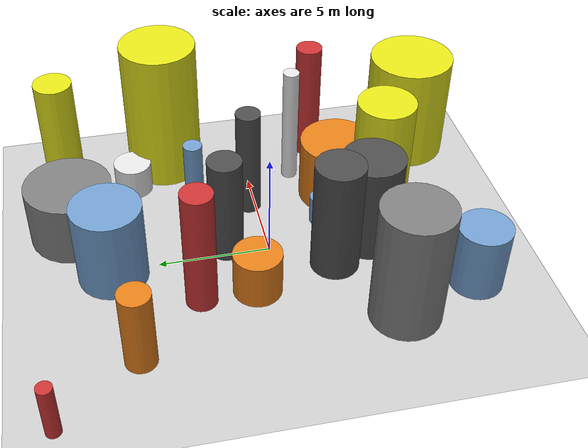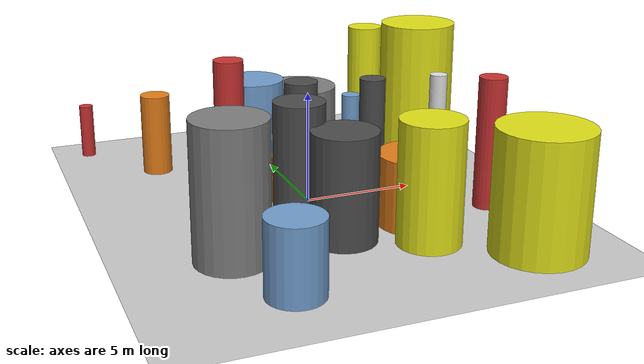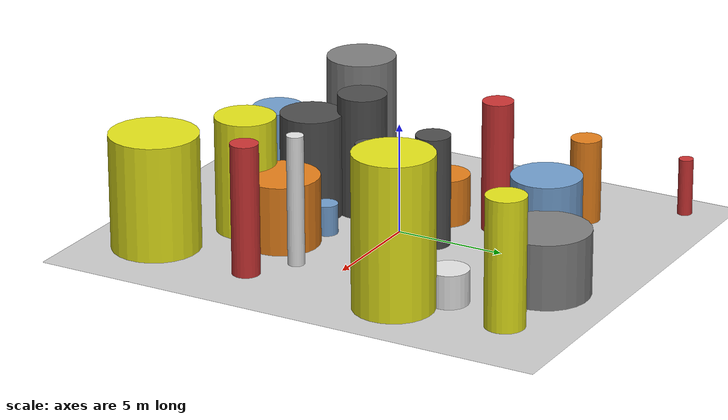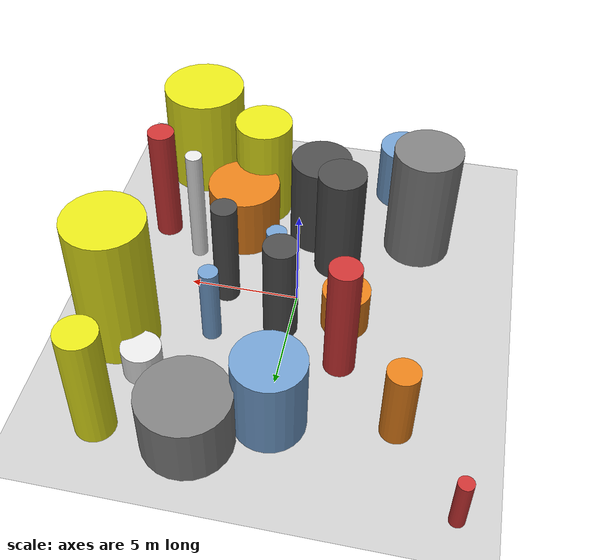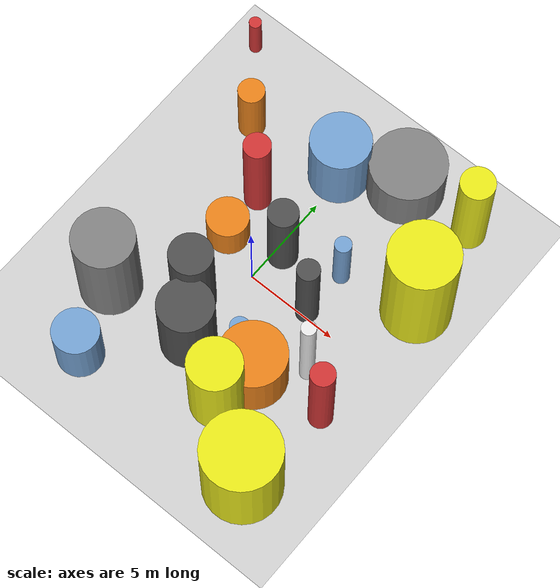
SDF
<?xml version='1.0'?>
<sdf version='1.6'>
  <world name='default'>
    <!-- Sun light -->
    <light name='sun' type='directional'>
      <cast_shadows>1</cast_shadows>
      <pose>0 0 10 0 0 0</pose>
      <diffuse>0.8 0.8 0.8 1</diffuse>
      <specular>0.2 0.2 0.2 1</specular>
      <attenuation>
        <range>1000</range>
        <constant>0.9</constant>
        <linear>0.01</linear>
        <quadratic>0.001</quadratic>
      </attenuation>
      <direction>-0.5 0.1 -0.9</direction>
    </light>

    <!-- Ground plane -->
    <model name='ground_plane'>
      <static>1</static>
      <link name='link'>
        <collision name='collision'>
          <geometry>
            <plane>
              <normal>0 0 1</normal>
              <size>100 100</size>
            </plane>
          </geometry>
          <surface>
            <contact>
              <collide_bitmask>65535</collide_bitmask>
              <ode/>
            </contact>
            <friction>
              <ode>
                <mu>100</mu>
                <mu2>50</mu2>
              </ode>
              <torsional><ode/></torsional>
            </friction>
            <bounce/>
          </surface>
          <max_contacts>10</max_contacts>
        </collision>
        <visual name='visual'>
          <cast_shadows>0</cast_shadows>
          <geometry>
            <plane>
              <normal>0 0 1</normal>
              <size>100 100</size>
            </plane>
          </geometry>
          <material>
            <script>
              <uri>file://media/materials/scripts/gazebo.material</uri>
              <n>Gazebo/Grey</n>
            </script>
          </material>
        </visual>
      </link>
    </model>

    <!-- Environment -->
    <magnetic_field>6e-06 2.3e-05 -4.2e-05</magnetic_field>
    <atmosphere type='adiabatic'/>
    <physics name='default_physics' default='0' type='ode'>
      <gravity>0 0 -9.8</gravity>
      <max_step_size>0.004</max_step_size>
      <real_time_factor>1</real_time_factor>
      <real_time_update_rate>250</real_time_update_rate>
    </physics>
    <scene>
      <ambient>0.4 0.4 0.4 1</ambient>
      <background>0.7 0.7 0.7 1</background>
      <shadows>1</shadows>
    </scene>
    <wind/>
    <spherical_coordinates>
      <surface_model>EARTH_WGS84</surface_model>
      <latitude_deg>0</latitude_deg>
      <longitude_deg>0</longitude_deg>
      <elevation>0</elevation>
      <heading_deg>0</heading_deg>
    </spherical_coordinates>

    <!-- ============ OBSTACLES (22) ============ -->
    <model name='obs_00'>
      <static>1</static>
      <link name='link'>
        <visual name='visual'>
          <geometry>
            <cylinder>
              <radius>1.4099</radius>
              <length>4.6870</length>
            </cylinder>
          </geometry>
          <material>
            <script>
              <n>Gazebo/DarkGrey</n>
              <uri>file://media/materials/scripts/gazebo.material</uri>
            </script>
            <ambient>0.3 0.3 0.3 1</ambient>
          </material>
        </visual>
        <collision name='collision'>
          <geometry>
            <cylinder>
              <radius>1.4099</radius>
              <length>4.6870</length>
            </cylinder>
          </geometry>
          <max_contacts>10</max_contacts>
          <surface>
            <contact><ode/></contact>
            <bounce/>
            <friction>
              <ode><mu>1</mu><mu2>1</mu2></ode>
              <torsional><ode/></torsional>
            </friction>
          </surface>
        </collision>
      </link>
      <pose>-0.2072 -4.5335 2.3435 0 0 2.0783</pose>
    </model>

    <model name='obs_01'>
      <static>1</static>
      <link name='link'>
        <visual name='visual'>
          <geometry>
            <cylinder>
              <radius>0.7744</radius>
              <length>5.0259</length>
            </cylinder>
          </geometry>
          <material>
            <script>
              <n>Gazebo/DarkGrey</n>
              <uri>file://media/materials/scripts/gazebo.material</uri>
            </script>
            <ambient>0.3 0.3 0.3 1</ambient>
          </material>
        </visual>
        <collision name='collision'>
          <geometry>
            <cylinder>
              <radius>0.7744</radius>
              <length>5.0259</length>
            </cylinder>
          </geometry>
          <max_contacts>10</max_contacts>
          <surface>
            <contact><ode/></contact>
            <bounce/>
            <friction>
              <ode><mu>1</mu><mu2>1</mu2></ode>
              <torsional><ode/></torsional>
            </friction>
          </surface>
        </collision>
      </link>
      <pose>0.4061 1.8769 2.5130 0 0 2.9055</pose>
    </model>

    <model name='obs_02'>
      <static>1</static>
      <link name='link'>
        <visual name='visual'>
          <geometry>
            <cylinder>
              <radius>0.3779</radius>
              <length>5.8635</length>
            </cylinder>
          </geometry>
          <material>
            <script>
              <n>Gazebo/White</n>
              <uri>file://media/materials/scripts/gazebo.material</uri>
            </script>
            <ambient>0.9 0.9 0.9 1</ambient>
          </material>
        </visual>
        <collision name='collision'>
          <geometry>
            <cylinder>
              <radius>0.3779</radius>
              <length>5.8635</length>
            </cylinder>
          </geometry>
          <max_contacts>10</max_contacts>
          <surface>
            <contact><ode/></contact>
            <bounce/>
            <friction>
              <ode><mu>1</mu><mu2>1</mu2></ode>
              <torsional><ode/></torsional>
            </friction>
          </surface>
        </collision>
      </link>
      <pose>5.2334 -2.1279 2.9317 0 0 0.8761</pose>
    </model>

    <model name='obs_03'>
      <static>1</static>
      <link name='link'>
        <visual name='visual'>
          <geometry>
            <cylinder>
              <radius>1.5700</radius>
              <length>5.8278</length>
            </cylinder>
          </geometry>
          <material>
            <script>
              <n>Gazebo/Grey</n>
              <uri>file://media/materials/scripts/gazebo.material</uri>
            </script>
            <ambient>0.5 0.5 0.5 1</ambient>
          </material>
        </visual>
        <collision name='collision'>
          <geometry>
            <cylinder>
              <radius>1.5700</radius>
              <length>5.8278</length>
            </cylinder>
          </geometry>
          <max_contacts>10</max_contacts>
          <surface>
            <contact><ode/></contact>
            <bounce/>
            <friction>
              <ode><mu>1</mu><mu2>1</mu2></ode>
              <torsional><ode/></torsional>
            </friction>
          </surface>
        </collision>
      </link>
      <pose>-5.0206 -4.7588 2.9139 0 0 0.0266</pose>
    </model>

    <model name='obs_04'>
      <static>1</static>
      <link name='link'>
        <visual name='visual'>
          <geometry>
            <cylinder>
              <radius>1.9664</radius>
              <length>2.9093</length>
            </cylinder>
          </geometry>
          <material>
            <script>
              <n>Gazebo/Grey</n>
              <uri>file://media/materials/scripts/gazebo.material</uri>
            </script>
            <ambient>0.5 0.5 0.5 1</ambient>
          </material>
        </visual>
        <collision name='collision'>
          <geometry>
            <cylinder>
              <radius>1.9664</radius>
              <length>2.9093</length>
            </cylinder>
          </geometry>
          <max_contacts>10</max_contacts>
          <surface>
            <contact><ode/></contact>
            <bounce/>
            <friction>
              <ode><mu>1</mu><mu2>1</mu2></ode>
              <torsional><ode/></torsional>
            </friction>
          </surface>
        </collision>
      </link>
      <pose>2.8334 8.5609 1.4546 0 0 0.6643</pose>
    </model>

    <model name='obs_05'>
      <static>1</static>
      <link name='link'>
        <visual name='visual'>
          <geometry>
            <cylinder>
              <radius>0.8835</radius>
              <length>1.5088</length>
            </cylinder>
          </geometry>
          <material>
            <script>
              <n>Gazebo/White</n>
              <uri>file://media/materials/scripts/gazebo.material</uri>
            </script>
            <ambient>0.9 0.9 0.9 1</ambient>
          </material>
        </visual>
        <collision name='collision'>
          <geometry>
            <cylinder>
              <radius>0.8835</radius>
              <length>1.5088</length>
            </cylinder>
          </geometry>
          <max_contacts>10</max_contacts>
          <surface>
            <contact><ode/></contact>
            <bounce/>
            <friction>
              <ode><mu>1</mu><mu2>1</mu2></ode>
              <torsional><ode/></torsional>
            </friction>
          </surface>
        </collision>
      </link>
      <pose>5.6661 5.5089 0.7544 0 0 2.9061</pose>
    </model>

    <model name='obs_06'>
      <static>1</static>
      <link name='link'>
        <visual name='visual'>
          <geometry>
            <cylinder>
              <radius>1.9825</radius>
              <length>5.2115</length>
            </cylinder>
          </geometry>
          <material>
            <script>
              <n>Gazebo/Yellow</n>
              <uri>file://media/materials/scripts/gazebo.material</uri>
            </script>
            <ambient>0.9 0.9 0.1 1</ambient>
          </material>
        </visual>
        <collision name='collision'>
          <geometry>
            <cylinder>
              <radius>1.9825</radius>
              <length>5.2115</length>
            </cylinder>
          </geometry>
          <max_contacts>10</max_contacts>
          <surface>
            <contact><ode/></contact>
            <bounce/>
            <friction>
              <ode><mu>1</mu><mu2>1</mu2></ode>
              <torsional><ode/></torsional>
            </friction>
          </surface>
        </collision>
      </link>
      <pose>6.4762 -8.4206 2.6058 0 0 0.6811</pose>
    </model>

    <model name='obs_07'>
      <static>1</static>
      <link name='link'>
        <visual name='visual'>
          <geometry>
            <cylinder>
              <radius>0.3271</radius>
              <length>2.5832</length>
            </cylinder>
          </geometry>
          <material>
            <script>
              <n>Gazebo/Red</n>
              <uri>file://media/materials/scripts/gazebo.material</uri>
            </script>
            <ambient>0.8 0.2 0.2 1</ambient>
          </material>
        </visual>
        <collision name='collision'>
          <geometry>
            <cylinder>
              <radius>0.3271</radius>
              <length>2.5832</length>
            </cylinder>
          </geometry>
          <max_contacts>10</max_contacts>
          <surface>
            <contact><ode/></contact>
            <bounce/>
            <friction>
              <ode><mu>1</mu><mu2>1</mu2></ode>
              <torsional><ode/></torsional>
            </friction>
          </surface>
        </collision>
      </link>
      <pose>-8.0853 9.9435 1.2916 0 0 1.1476</pose>
    </model>

    <model name='obs_08'>
      <static>1</static>
      <link name='link'>
        <visual name='visual'>
          <geometry>
            <cylinder>
              <radius>0.5078</radius>
              <length>1.3729</length>
            </cylinder>
          </geometry>
          <material>
            <script>
              <n>Gazebo/Blue</n>
              <uri>file://media/materials/scripts/gazebo.material</uri>
            </script>
            <ambient>0.447 0.624 0.812 1</ambient>
          </material>
        </visual>
        <collision name='collision'>
          <geometry>
            <cylinder>
              <radius>0.5078</radius>
              <length>1.3729</length>
            </cylinder>
          </geometry>
          <max_contacts>10</max_contacts>
          <surface>
            <contact><ode/></contact>
            <bounce/>
            <friction>
              <ode><mu>1</mu><mu2>1</mu2></ode>
              <torsional><ode/></torsional>
            </friction>
          </surface>
        </collision>
      </link>
      <pose>1.5631 -2.7662 0.6864 0 0 2.4300</pose>
    </model>

    <model name='obs_09'>
      <static>1</static>
      <link name='link'>
        <visual name='visual'>
          <geometry>
            <cylinder>
              <radius>1.5548</radius>
              <length>3.9361</length>
            </cylinder>
          </geometry>
          <material>
            <script>
              <n>Gazebo/Blue</n>
              <uri>file://media/materials/scripts/gazebo.material</uri>
            </script>
            <ambient>0.447 0.624 0.812 1</ambient>
          </material>
        </visual>
        <collision name='collision'>
          <geometry>
            <cylinder>
              <radius>1.5548</radius>
              <length>3.9361</length>
            </cylinder>
          </geometry>
          <max_contacts>10</max_contacts>
          <surface>
            <contact><ode/></contact>
            <bounce/>
            <friction>
              <ode><mu>1</mu><mu2>1</mu2></ode>
              <torsional><ode/></torsional>
            </friction>
          </surface>
        </collision>
      </link>
      <pose>-0.2119 7.0260 1.9681 0 0 0.3679</pose>
    </model>

    <model name='obs_10'>
      <static>1</static>
      <link name='link'>
        <visual name='visual'>
          <geometry>
            <cylinder>
              <radius>0.6975</radius>
              <length>5.9164</length>
            </cylinder>
          </geometry>
          <material>
            <script>
              <n>Gazebo/Red</n>
              <uri>file://media/materials/scripts/gazebo.material</uri>
            </script>
            <ambient>0.8 0.2 0.2 1</ambient>
          </material>
        </visual>
        <collision name='collision'>
          <geometry>
            <cylinder>
              <radius>0.6975</radius>
              <length>5.9164</length>
            </cylinder>
          </geometry>
          <max_contacts>10</max_contacts>
          <surface>
            <contact><ode/></contact>
            <bounce/>
            <friction>
              <ode><mu>1</mu><mu2>1</mu2></ode>
              <torsional><ode/></torsional>
            </friction>
          </surface>
        </collision>
      </link>
      <pose>-2.5246 3.4740 2.9582 0 0 0.2684</pose>
    </model>

    <model name='obs_11'>
      <static>1</static>
      <link name='link'>
        <visual name='visual'>
          <geometry>
            <cylinder>
              <radius>0.5792</radius>
              <length>5.2853</length>
            </cylinder>
          </geometry>
          <material>
            <script>
              <n>Gazebo/DarkGrey</n>
              <uri>file://media/materials/scripts/gazebo.material</uri>
            </script>
            <ambient>0.3 0.3 0.3 1</ambient>
          </material>
        </visual>
        <collision name='collision'>
          <geometry>
            <cylinder>
              <radius>0.5792</radius>
              <length>5.2853</length>
            </cylinder>
          </geometry>
          <max_contacts>10</max_contacts>
          <surface>
            <contact><ode/></contact>
            <bounce/>
            <friction>
              <ode><mu>1</mu><mu2>1</mu2></ode>
              <torsional><ode/></torsional>
            </friction>
          </surface>
        </collision>
      </link>
      <pose>3.2434 0.3026 2.6427 0 0 0.9836</pose>
    </model>

    <model name='obs_12'>
      <static>1</static>
      <link name='link'>
        <visual name='visual'>
          <geometry>
            <cylinder>
              <radius>0.6882</radius>
              <length>3.8082</length>
            </cylinder>
          </geometry>
          <material>
            <script>
              <n>Gazebo/Orange</n>
              <uri>file://media/materials/scripts/gazebo.material</uri>
            </script>
            <ambient>0.9 0.5 0.1 1</ambient>
          </material>
        </visual>
        <collision name='collision'>
          <geometry>
            <cylinder>
              <radius>0.6882</radius>
              <length>3.8082</length>
            </cylinder>
          </geometry>
          <max_contacts>10</max_contacts>
          <surface>
            <contact><ode/></contact>
            <bounce/>
            <friction>
              <ode><mu>1</mu><mu2>1</mu2></ode>
              <torsional><ode/></torsional>
            </friction>
          </surface>
        </collision>
      </link>
      <pose>-5.3387 6.3718 1.9041 0 0 1.4391</pose>
    </model>

    <model name='obs_13'>
      <static>1</static>
      <link name='link'>
        <visual name='visual'>
          <geometry>
            <cylinder>
              <radius>1.1860</radius>
              <length>3.1328</length>
            </cylinder>
          </geometry>
          <material>
            <script>
              <n>Gazebo/Blue</n>
              <uri>file://media/materials/scripts/gazebo.material</uri>
            </script>
            <ambient>0.447 0.624 0.812 1</ambient>
          </material>
        </visual>
        <collision name='collision'>
          <geometry>
            <cylinder>
              <radius>1.1860</radius>
              <length>3.1328</length>
            </cylinder>
          </geometry>
          <max_contacts>10</max_contacts>
          <surface>
            <contact><ode/></contact>
            <bounce/>
            <friction>
              <ode><mu>1</mu><mu2>1</mu2></ode>
              <torsional><ode/></torsional>
            </friction>
          </surface>
        </collision>
      </link>
      <pose>-3.7772 -8.4034 1.5664 0 0 0.6034</pose>
    </model>

    <model name='obs_14'>
      <static>1</static>
      <link name='link'>
        <visual name='visual'>
          <geometry>
            <cylinder>
              <radius>1.7027</radius>
              <length>3.1068</length>
            </cylinder>
          </geometry>
          <material>
            <script>
              <n>Gazebo/Orange</n>
              <uri>file://media/materials/scripts/gazebo.material</uri>
            </script>
            <ambient>0.9 0.5 0.1 1</ambient>
          </material>
        </visual>
        <collision name='collision'>
          <geometry>
            <cylinder>
              <radius>1.7027</radius>
              <length>3.1068</length>
            </cylinder>
          </geometry>
          <max_contacts>10</max_contacts>
          <surface>
            <contact><ode/></contact>
            <bounce/>
            <friction>
              <ode><mu>1</mu><mu2>1</mu2></ode>
              <torsional><ode/></torsional>
            </friction>
          </surface>
        </collision>
      </link>
      <pose>3.3947 -3.9344 1.5534 0 0 3.1190</pose>
    </model>

    <model name='obs_15'>
      <static>1</static>
      <link name='link'>
        <visual name='visual'>
          <geometry>
            <cylinder>
              <radius>1.0778</radius>
              <length>2.1295</length>
            </cylinder>
          </geometry>
          <material>
            <script>
              <n>Gazebo/Orange</n>
              <uri>file://media/materials/scripts/gazebo.material</uri>
            </script>
            <ambient>0.9 0.5 0.1 1</ambient>
          </material>
        </visual>
        <collision name='collision'>
          <geometry>
            <cylinder>
              <radius>1.0778</radius>
              <length>2.1295</length>
            </cylinder>
          </geometry>
          <max_contacts>10</max_contacts>
          <surface>
            <contact><ode/></contact>
            <bounce/>
            <friction>
              <ode><mu>1</mu><mu2>1</mu2></ode>
              <torsional><ode/></torsional>
            </friction>
          </surface>
        </collision>
      </link>
      <pose>-2.3746 1.0154 1.0648 0 0 0.2115</pose>
    </model>

    <model name='obs_16'>
      <static>1</static>
      <link name='link'>
        <visual name='visual'>
          <geometry>
            <cylinder>
              <radius>1.0978</radius>
              <length>5.5150</length>
            </cylinder>
          </geometry>
          <material>
            <script>
              <n>Gazebo/DarkGrey</n>
              <uri>file://media/materials/scripts/gazebo.material</uri>
            </script>
            <ambient>0.3 0.3 0.3 1</ambient>
          </material>
        </visual>
        <collision name='collision'>
          <geometry>
            <cylinder>
              <radius>1.0978</radius>
              <length>5.5150</length>
            </cylinder>
          </geometry>
          <max_contacts>10</max_contacts>
          <surface>
            <contact><ode/></contact>
            <bounce/>
            <friction>
              <ode><mu>1</mu><mu2>1</mu2></ode>
              <torsional><ode/></torsional>
            </friction>
          </surface>
        </collision>
      </link>
      <pose>-1.4339 -2.6700 2.7575 0 0 1.3721</pose>
    </model>

    <model name='obs_17'>
      <static>1</static>
      <link name='link'>
        <visual name='visual'>
          <geometry>
            <cylinder>
              <radius>0.8825</radius>
              <length>5.7601</length>
            </cylinder>
          </geometry>
          <material>
            <script>
              <n>Gazebo/Yellow</n>
              <uri>file://media/materials/scripts/gazebo.material</uri>
            </script>
            <ambient>0.9 0.9 0.1 1</ambient>
          </material>
        </visual>
        <collision name='collision'>
          <geometry>
            <cylinder>
              <radius>0.8825</radius>
              <length>5.7601</length>
            </cylinder>
          </geometry>
          <max_contacts>10</max_contacts>
          <surface>
            <contact><ode/></contact>
            <bounce/>
            <friction>
              <ode><mu>1</mu><mu2>1</mu2></ode>
              <torsional><ode/></torsional>
            </friction>
          </surface>
        </collision>
      </link>
      <pose>6.7024 8.6754 2.8800 0 0 1.9212</pose>
    </model>

    <model name='obs_18'>
      <static>1</static>
      <link name='link'>
        <visual name='visual'>
          <geometry>
            <cylinder>
              <radius>0.4329</radius>
              <length>3.8637</length>
            </cylinder>
          </geometry>
          <material>
            <script>
              <n>Gazebo/Blue</n>
              <uri>file://media/materials/scripts/gazebo.material</uri>
            </script>
            <ambient>0.447 0.624 0.812 1</ambient>
          </material>
        </visual>
        <collision name='collision'>
          <geometry>
            <cylinder>
              <radius>0.4329</radius>
              <length>3.8637</length>
            </cylinder>
          </geometry>
          <max_contacts>10</max_contacts>
          <surface>
            <contact><ode/></contact>
            <bounce/>
            <friction>
              <ode><mu>1</mu><mu2>1</mu2></ode>
              <torsional><ode/></torsional>
            </friction>
          </surface>
        </collision>
      </link>
      <pose>3.3216 2.8414 1.9319 0 0 0.1837</pose>
    </model>

    <model name='obs_19'>
      <static>1</static>
      <link name='link'>
        <visual name='visual'>
          <geometry>
            <cylinder>
              <radius>1.3600</radius>
              <length>5.2601</length>
            </cylinder>
          </geometry>
          <material>
            <script>
              <n>Gazebo/Yellow</n>
              <uri>file://media/materials/scripts/gazebo.material</uri>
            </script>
            <ambient>0.9 0.9 0.1 1</ambient>
          </material>
        </visual>
        <collision name='collision'>
          <geometry>
            <cylinder>
              <radius>1.3600</radius>
              <length>5.2601</length>
            </cylinder>
          </geometry>
          <max_contacts>10</max_contacts>
          <surface>
            <contact><ode/></contact>
            <bounce/>
            <friction>
              <ode><mu>1</mu><mu2>1</mu2></ode>
              <torsional><ode/></torsional>
            </friction>
          </surface>
        </collision>
      </link>
      <pose>2.8788 -6.0429 2.6301 0 0 0.4799</pose>
    </model>

    <model name='obs_20'>
      <static>1</static>
      <link name='link'>
        <visual name='visual'>
          <geometry>
            <cylinder>
              <radius>1.7744</radius>
              <length>6.8711</length>
            </cylinder>
          </geometry>
          <material>
            <script>
              <n>Gazebo/Yellow</n>
              <uri>file://media/materials/scripts/gazebo.material</uri>
            </script>
            <ambient>0.9 0.9 0.1 1</ambient>
          </material>
        </visual>
        <collision name='collision'>
          <geometry>
            <cylinder>
              <radius>1.7744</radius>
              <length>6.8711</length>
            </cylinder>
          </geometry>
          <max_contacts>10</max_contacts>
          <surface>
            <contact><ode/></contact>
            <bounce/>
            <friction>
              <ode><mu>1</mu><mu2>1</mu2></ode>
              <torsional><ode/></torsional>
            </friction>
          </surface>
        </collision>
      </link>
      <pose>7.2652 3.7714 3.4356 0 0 1.2138</pose>
    </model>

    <model name='obs_21'>
      <static>1</static>
      <link name='link'>
        <visual name='visual'>
          <geometry>
            <cylinder>
              <radius>0.6192</radius>
              <length>5.8938</length>
            </cylinder>
          </geometry>
          <material>
            <script>
              <n>Gazebo/Red</n>
              <uri>file://media/materials/scripts/gazebo.material</uri>
            </script>
            <ambient>0.8 0.2 0.2 1</ambient>
          </material>
        </visual>
        <collision name='collision'>
          <geometry>
            <cylinder>
              <radius>0.6192</radius>
              <length>5.8938</length>
            </cylinder>
          </geometry>
          <max_contacts>10</max_contacts>
          <surface>
            <contact><ode/></contact>
            <bounce/>
            <friction>
              <ode><mu>1</mu><mu2>1</mu2></ode>
              <torsional><ode/></torsional>
            </friction>
          </surface>
        </collision>
      </link>
      <pose>7.1607 -3.4550 2.9469 0 0 2.5279</pose>
    </model>

    <!-- GUI camera -->
    <gui fullscreen='0'>
      <camera name='user_camera'>
        <pose>-15 0 18 0 0.85 0.15</pose>
        <view_controller>orbit</view_controller>
        <projection_type>perspective</projection_type>
      </camera>
    </gui>
  </world>
</sdf>
